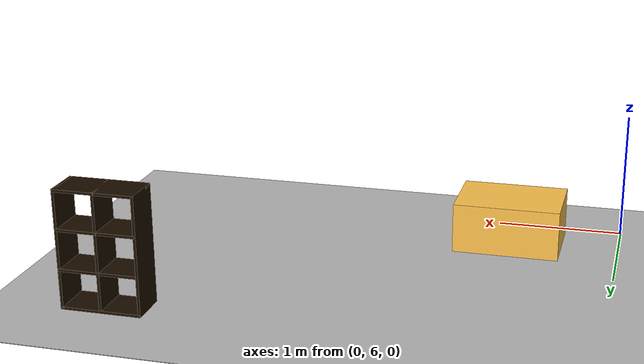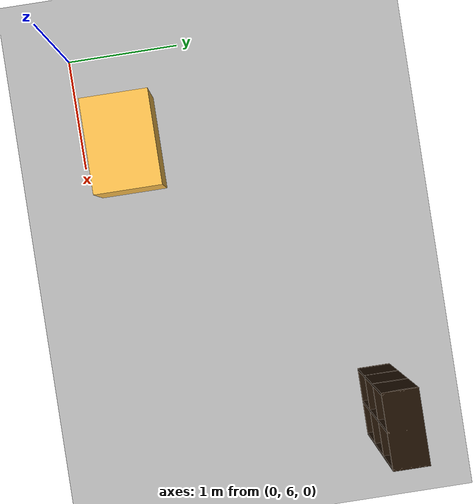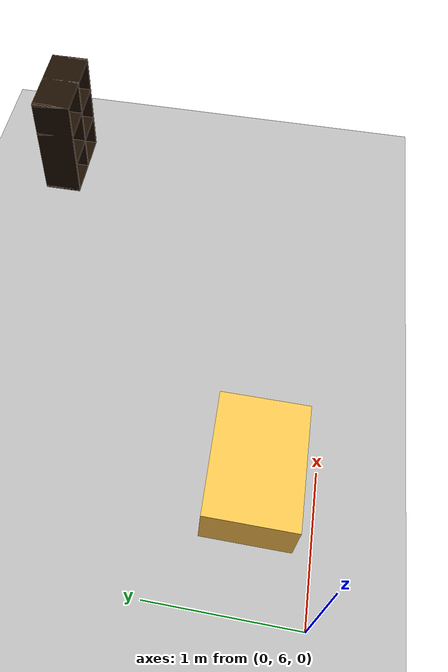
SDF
<sdf version="1.6">
 <world name="default">
  <model name="ground_plane">
   <static>1</static>
   <link name="link">
    <collision name="collision">
     <geometry><plane><normal>0 0 1</normal><size>100 100</size></plane></geometry>
     <surface><friction><ode><mu>100</mu><mu2>50</mu2></ode></friction></surface>
    </collision>
    <visual name="visual">
     <cast_shadows>0</cast_shadows>
     <geometry><plane><normal>0 0 1</normal><size>100 100</size></plane></geometry>
     <material>
      <script><uri>file://media/materials/scripts/gazebo.material</uri><name>Gazebo/Grey</name></script>
     </material>
    </visual>
   </link>
  </model>
  <model name="Floor_room4">
   <link name="main">
    <pose>0 0 0.01 0 -0 0</pose>
    <collision name="main_Collision">
     <geometry><box><size>10 10 0.001</size></box></geometry>
     <surface><friction><ode><mu>100</mu><mu2>100</mu2></ode></friction></surface>
    </collision>
    <visual name="main_Visual">
     <geometry><box><size>10 10 0.001</size></box></geometry>
     <material>
      <script>
       <uri>file:///home/linhai/.gazebo/models/Floor_room4/materials/scripts</uri>
       <uri>file:///home/linhai/.gazebo/models/Floor_room4/materials/textures</uri>
       <name>floor_room4</name>
      </script>
     </material>
    </visual>
   </link>
   <static>1</static>
   <pose>-0.001074 10.0046 -0.01 0 -0 0</pose>
  </model>
  <model name="6_Cube_StorageE_1">
   <link name="Wall_0">
    <pose>0 0 0.01 0 -0 0</pose>
    <inertial>
     <mass>1.6201</mass>
     <inertia><ixx>0.0119</ixx><iyy>0.0631</iyy><izz>0.0513</izz><ixy>0</ixy><ixz>0</ixz><iyz>0</iyz></inertia>
    </inertial>
    <collision name="Wall_0_Collision"><geometry><box><size>0.616 0.296 0.02</size></box></geometry></collision>
    <visual name="Wall_0_Visual">
     <geometry><box><size>0.616 0.296 0.02</size></box></geometry>
     <material>
      <script><uri>file://media/materials/scripts/gazebo.material</uri><name>Gazebo/Grey</name></script>
      <ambient>0.105882 0.0509804 0 1</ambient>
     </material>
    </visual>
   </link>
   <joint name="0_2" type="fixed">
    <pose>-0.308 0 0 0 -0 0</pose>
    <parent>Wall_2</parent>
    <child>Wall_0</child>
    <axis>
     <xyz>1 0 0</xyz>
     <use_parent_model_frame>0</use_parent_model_frame>
     <limit><lower>-1e+16</lower><upper>1e+16</upper></limit>
    </axis>
   </joint>
   <joint name="0_12" type="fixed">
    <parent>Wall_12</parent>
    <child>Wall_0</child>
    <axis>
     <xyz>0 0 1</xyz>
     <use_parent_model_frame>0</use_parent_model_frame>
     <limit><lower>-1e+16</lower><upper>1e+16</upper></limit>
    </axis>
   </joint>
   <joint name="0_4" type="fixed">
    <pose>0.308 0 0 0 -0 0</pose>
    <parent>Wall_4</parent>
    <child>Wall_0</child>
    <axis>
     <xyz>1 0 0</xyz>
     <use_parent_model_frame>0</use_parent_model_frame>
     <limit><lower>-1e+16</lower><upper>1e+16</upper></limit>
    </axis>
   </joint>
   <link name="Wall_10">
    <pose>0 0 0.61 0 -0 0</pose>
    <inertial>
     <mass>1.6201</mass>
     <inertia><ixx>0.0119</ixx><iyy>0.0631</iyy><izz>0.0513</izz><ixy>0</ixy><ixz>0</ixz><iyz>0</iyz></inertia>
    </inertial>
    <collision name="Wall_10_Collision"><geometry><box><size>0.616 0.296 0.02</size></box></geometry></collision>
    <visual name="Wall_10_Visual">
     <geometry><box><size>0.616 0.296 0.02</size></box></geometry>
     <material>
      <script><uri>file://media/materials/scripts/gazebo.material</uri><name>Gazebo/Grey</name></script>
      <ambient>0.105882 0.0509804 0 1</ambient>
     </material>
    </visual>
   </link>
   <joint name="10_2" type="fixed">
    <pose>-0.308 0 0 0 -0 0</pose>
    <parent>Wall_2</parent>
    <child>Wall_10</child>
    <axis>
     <xyz>1 0 0</xyz>
     <use_parent_model_frame>0</use_parent_model_frame>
     <limit><lower>-1e+16</lower><upper>1e+16</upper></limit>
    </axis>
   </joint>
   <joint name="10_12" type="fixed">
    <parent>Wall_12</parent>
    <child>Wall_10</child>
    <axis>
     <xyz>0 0 1</xyz>
     <use_parent_model_frame>0</use_parent_model_frame>
     <limit><lower>-1e+16</lower><upper>1e+16</upper></limit>
    </axis>
   </joint>
   <joint name="10_4" type="fixed">
    <pose>0.308 0 0 0 -0 0</pose>
    <parent>Wall_4</parent>
    <child>Wall_10</child>
    <axis>
     <xyz>1 0 0</xyz>
     <use_parent_model_frame>0</use_parent_model_frame>
     <limit><lower>-1e+16</lower><upper>1e+16</upper></limit>
    </axis>
   </joint>
   <link name="Wall_12">
    <pose>0 0 0.4575 0 -0 0</pose>
    <inertial>
     <mass>2.4065</mass>
     <inertia><ixx>0.0177</ixx><iyy>0.1855</iyy><izz>0.168</izz><ixy>0</ixy><ixz>0</ixz><iyz>0</iyz></inertia>
    </inertial>
    <collision name="Wall_12_Collision"><geometry><box><size>0.02 0.296 0.915</size></box></geometry></collision>
    <visual name="Wall_12_Visual">
     <geometry><box><size>0.02 0.296 0.915</size></box></geometry>
     <material>
      <script><uri>file://media/materials/scripts/gazebo.material</uri><name>Gazebo/Grey</name></script>
      <ambient>0.105882 0.0509804 0 1</ambient>
     </material>
    </visual>
   </link>
   <link name="Wall_2">
    <pose>-0.298 0 0.4575 0 -0 0</pose>
    <inertial>
     <mass>2.4065</mass>
     <inertia><ixx>0.0177</ixx><iyy>0.1855</iyy><izz>0.168</izz><ixy>0</ixy><ixz>0</ixz><iyz>0</iyz></inertia>
    </inertial>
    <collision name="Wall_2_Collision"><geometry><box><size>0.02 0.296 0.915</size></box></geometry></collision>
    <visual name="Wall_2_Visual">
     <geometry><box><size>0.02 0.296 0.915</size></box></geometry>
     <material>
      <script><uri>file://media/materials/scripts/gazebo.material</uri><name>Gazebo/Grey</name></script>
      <ambient>0.105882 0.0509804 0 1</ambient>
     </material>
    </visual>
   </link>
   <link name="Wall_4">
    <pose>0.298 0 0.4575 0 -0 0</pose>
    <inertial>
     <mass>2.4065</mass>
     <inertia><ixx>0.0177</ixx><iyy>0.1855</iyy><izz>0.168</izz><ixy>0</ixy><ixz>0</ixz><iyz>0</iyz></inertia>
    </inertial>
    <collision name="Wall_4_Collision"><geometry><box><size>0.02 0.296 0.915</size></box></geometry></collision>
    <visual name="Wall_4_Visual">
     <geometry><box><size>0.02 0.296 0.915</size></box></geometry>
     <material>
      <script><uri>file://media/materials/scripts/gazebo.material</uri><name>Gazebo/Grey</name></script>
      <ambient>0.105882 0.0509804 0 1</ambient>
     </material>
    </visual>
   </link>
   <link name="Wall_6">
    <pose>0 0 0.905 0 -0 0</pose>
    <inertial>
     <mass>1.6201</mass>
     <inertia><ixx>0.0119</ixx><iyy>0.0631</iyy><izz>0.0513</izz><ixy>0</ixy><ixz>0</ixz><iyz>0</iyz></inertia>
    </inertial>
    <collision name="Wall_6_Collision"><geometry><box><size>0.616 0.296 0.02</size></box></geometry></collision>
    <visual name="Wall_6_Visual">
     <geometry><box><size>0.616 0.296 0.02</size></box></geometry>
     <material>
      <script><uri>file://media/materials/scripts/gazebo.material</uri><name>Gazebo/Grey</name></script>
      <ambient>0.105882 0.0509804 0 1</ambient>
     </material>
    </visual>
   </link>
   <joint name="6_2" type="fixed">
    <pose>-0.308 0 0 0 -0 0</pose>
    <parent>Wall_2</parent>
    <child>Wall_6</child>
    <axis>
     <xyz>2 0 0</xyz>
     <use_parent_model_frame>0</use_parent_model_frame>
     <limit><lower>-1e+16</lower><upper>1e+16</upper></limit>
    </axis>
   </joint>
   <joint name="6_12" type="fixed">
    <parent>Wall_12</parent>
    <child>Wall_6</child>
    <axis>
     <xyz>0 0 1</xyz>
     <use_parent_model_frame>0</use_parent_model_frame>
     <limit><lower>-1e+16</lower><upper>1e+16</upper></limit>
    </axis>
   </joint>
   <joint name="6_4" type="fixed">
    <pose>0.308 0 0 0 -0 0</pose>
    <parent>Wall_4</parent>
    <child>Wall_6</child>
    <axis>
     <xyz>1 0 0</xyz>
     <use_parent_model_frame>0</use_parent_model_frame>
     <limit><lower>-1e+16</lower><upper>1e+16</upper></limit>
    </axis>
   </joint>
   <link name="Wall_8">
    <pose>0 0 0.305 0 -0 0</pose>
    <inertial>
     <mass>1.6201</mass>
     <inertia><ixx>0.0119</ixx><iyy>0.0631</iyy><izz>0.0513</izz><ixy>0</ixy><ixz>0</ixz><iyz>0</iyz></inertia>
    </inertial>
    <collision name="Wall_8_Collision"><geometry><box><size>0.616 0.296 0.02</size></box></geometry></collision>
    <visual name="Wall_8_Visual">
     <geometry><box><size>0.616 0.296 0.02</size></box></geometry>
     <material>
      <script><uri>file://media/materials/scripts/gazebo.material</uri><name>Gazebo/Grey</name></script>
      <ambient>0.105882 0.0509804 0 1</ambient>
     </material>
    </visual>
   </link>
   <joint name="8_2" type="fixed">
    <pose>-0.308 0 0 0 -0 0</pose>
    <parent>Wall_2</parent>
    <child>Wall_8</child>
    <axis>
     <xyz>1 0 0</xyz>
     <use_parent_model_frame>0</use_parent_model_frame>
     <limit><lower>-1e+16</lower><upper>1e+16</upper></limit>
    </axis>
   </joint>
   <joint name="8_12" type="fixed">
    <parent>Wall_12</parent>
    <child>Wall_8</child>
    <axis>
     <xyz>0 0 1</xyz>
     <use_parent_model_frame>0</use_parent_model_frame>
     <limit><lower>-1e+16</lower><upper>1e+16</upper></limit>
    </axis>
   </joint>
   <joint name="8_4" type="fixed">
    <pose>0.308 0 0 0 -0 0</pose>
    <parent>Wall_4</parent>
    <child>Wall_8</child>
    <axis>
     <xyz>1 0 0</xyz>
     <use_parent_model_frame>0</use_parent_model_frame>
     <limit><lower>-1e+16</lower><upper>1e+16</upper></limit>
    </axis>
   </joint>
   <static>1</static>
   <pose>3.50637 8.34412 0 0 -0 0</pose>
  </model>
  <model name="Box_33x15">
   <link name="Wall">
    <pose>0 0 0.1985 0 -0 0</pose>
    <inertial>
     <mass>5</mass>
     <inertia><ixx>0.2157</ixx><iyy>0.3597</iyy><izz>0.444</izz><ixy>0</ixy><ixz>0</ixz><iyz>0</iyz></inertia>
    </inertial>
    <collision name="Wall_Collision"><geometry><box><size>0.84 0.6 0.397</size></box></geometry></collision>
    <visual name="Wall_Visual">
     <geometry><box><size>0.84 0.6 0.397</size></box></geometry>
     <material>
      <script><uri>file://media/materials/scripts/gazebo.material</uri><name>Gazebo/Grey</name></script>
      <ambient>1 0.764706 0.305882 1</ambient>
     </material>
    </visual>
   </link>
   <static>1</static>
   <pose>0.866333 6.41702 0 0 -0 0</pose>
  </model>
 </world>
</sdf>
